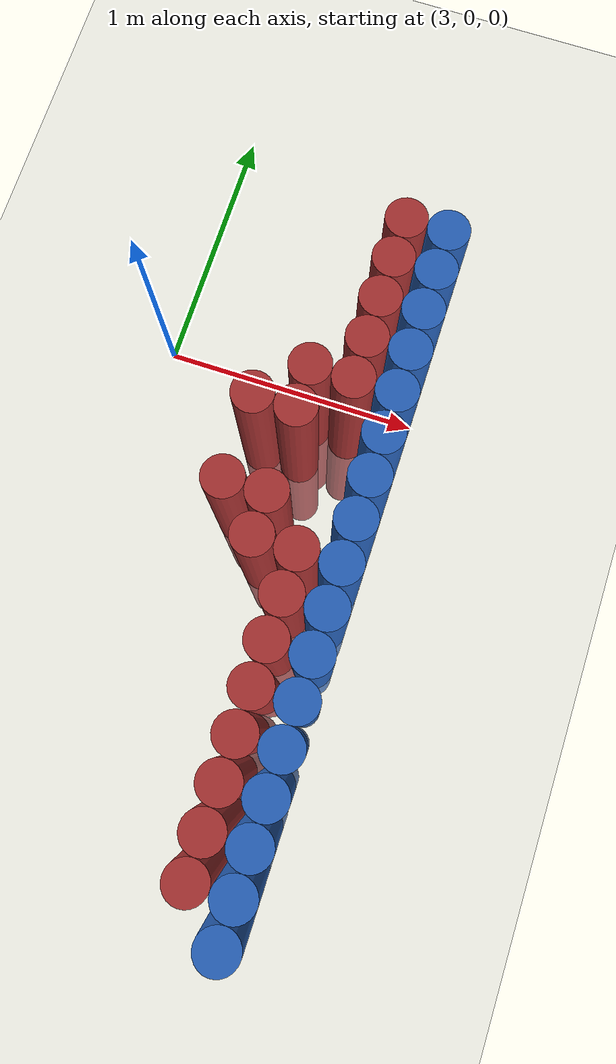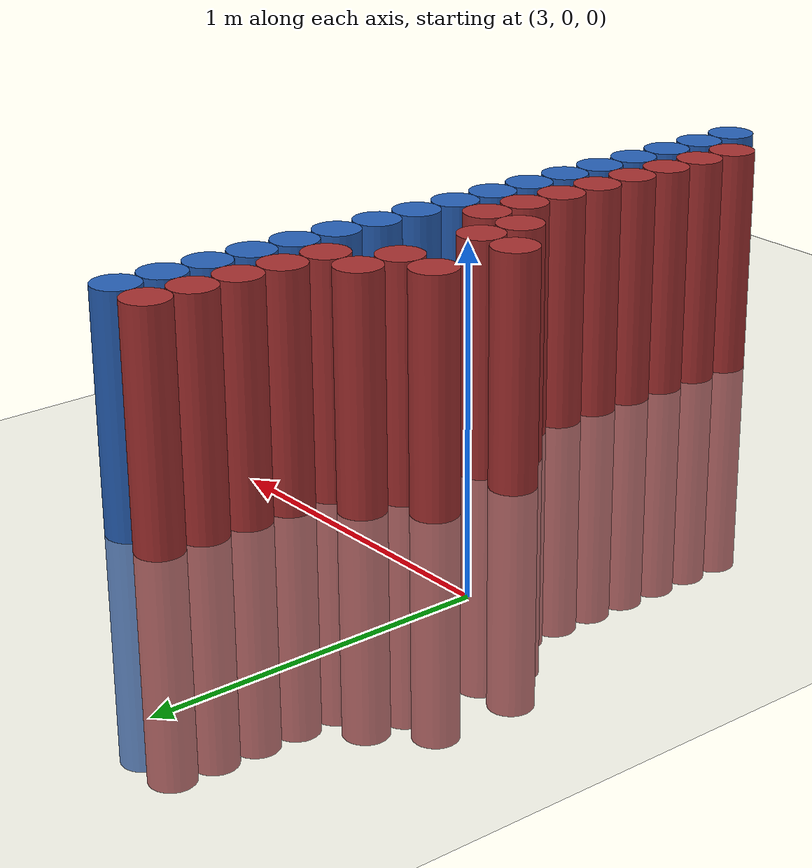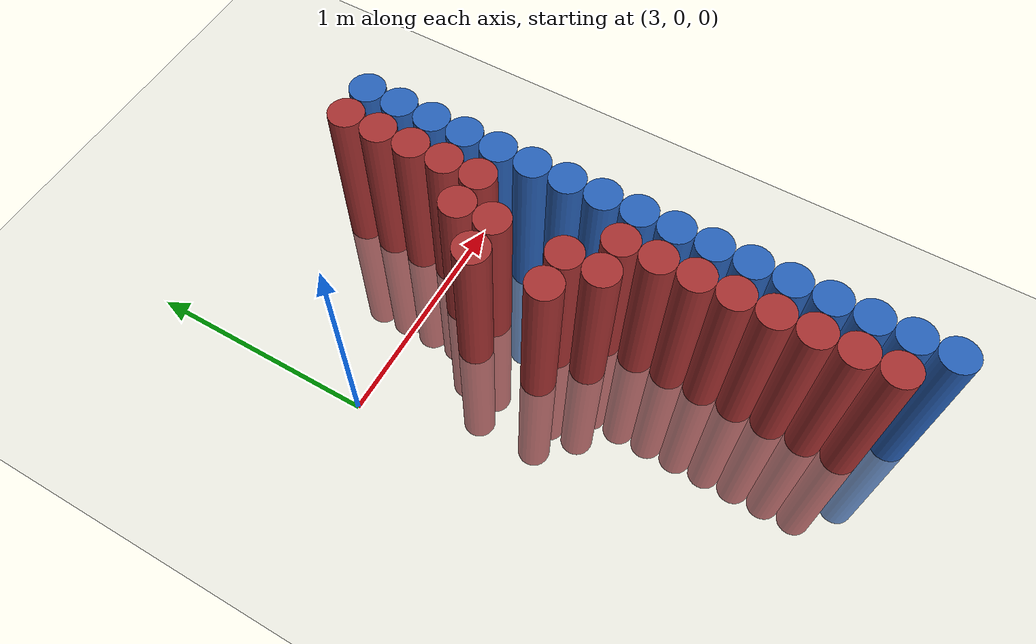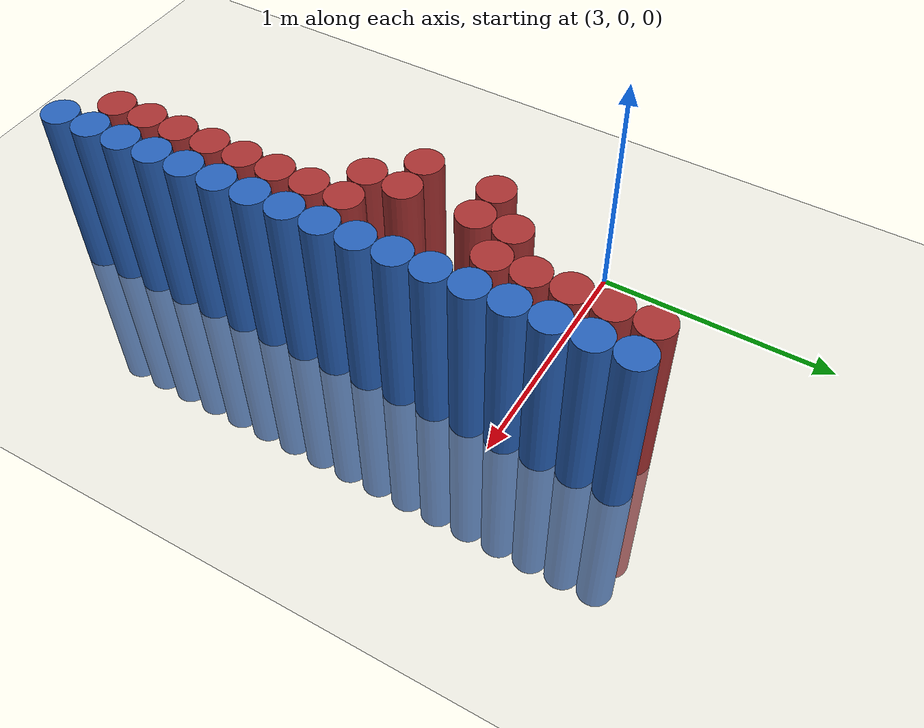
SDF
<sdf version="1.6">
 <world name="default">
  <model name="ground_plane">
   <static>1</static>
   <link name="link">
    <collision name="collision">
     <geometry><plane><normal>0 0 1</normal><size>100 100</size></plane></geometry>
     <surface><friction><ode><mu>100</mu><mu2>50</mu2></ode></friction></surface>
    </collision>
    <visual name="visual">
     <cast_shadows>0</cast_shadows>
     <geometry><plane><normal>0 0 1</normal><size>100 100</size></plane></geometry>
     <material>
      <script><uri>file://media/materials/scripts/gazebo.material</uri><name>Gazebo/Grey</name></script>
     </material>
    </visual>
   </link>
  </model>
  <model name="unit_cylinder_88">
   <static>1</static>
   <pose>3.925000 -1.925000 0.000000 0.000000 0.000000 0.000000</pose>
   <link name="link">
    <inertial>
     <mass>1</mass>
     <inertia><ixx>0.145833</ixx><ixy>0</ixy><ixz>0</ixz><iyy>0.145833</iyy><iyz>0</iyz><izz>0.125</izz></inertia>
    </inertial>
    <collision name="collision">
     <geometry><cylinder><radius>0.075000</radius><length>1.5</length></cylinder></geometry>
    </collision>
    <visual name="visual">
     <geometry><cylinder><radius>0.075000</radius><length>1.5</length></cylinder></geometry>
     <material>
      <ambient>0.152000 0.379000 0.720000 1</ambient>
      <diffuse>0.152000 0.379000 0.720000 1</diffuse>
     </material>
     <material>
      <script><name>Gazebo/Grey</name><uri>file://media/materials/scripts/gazebo.material</uri></script>
     </material>
    </visual>
   </link>
  </model>
  <model name="unit_cylinder_90">
   <static>1</static>
   <pose>3.925000 -1.775000 0.000000 0.000000 0.000000 0.000000</pose>
   <link name="link">
    <inertial>
     <mass>1</mass>
     <inertia><ixx>0.145833</ixx><ixy>0</ixy><ixz>0</ixz><iyy>0.145833</iyy><iyz>0</iyz><izz>0.125</izz></inertia>
    </inertial>
    <collision name="collision">
     <geometry><cylinder><radius>0.075000</radius><length>1.5</length></cylinder></geometry>
    </collision>
    <visual name="visual">
     <geometry><cylinder><radius>0.075000</radius><length>1.5</length></cylinder></geometry>
     <material>
      <ambient>0.152000 0.379000 0.720000 1</ambient>
      <diffuse>0.152000 0.379000 0.720000 1</diffuse>
     </material>
     <material>
      <script><name>Gazebo/Grey</name><uri>file://media/materials/scripts/gazebo.material</uri></script>
     </material>
    </visual>
   </link>
  </model>
  <model name="unit_cylinder_92">
   <static>1</static>
   <pose>3.925000 -1.625000 0.000000 0.000000 0.000000 0.000000</pose>
   <link name="link">
    <inertial>
     <mass>1</mass>
     <inertia><ixx>0.145833</ixx><ixy>0</ixy><ixz>0</ixz><iyy>0.145833</iyy><iyz>0</iyz><izz>0.125</izz></inertia>
    </inertial>
    <collision name="collision">
     <geometry><cylinder><radius>0.075000</radius><length>1.5</length></cylinder></geometry>
    </collision>
    <visual name="visual">
     <geometry><cylinder><radius>0.075000</radius><length>1.5</length></cylinder></geometry>
     <material>
      <ambient>0.152000 0.379000 0.720000 1</ambient>
      <diffuse>0.152000 0.379000 0.720000 1</diffuse>
     </material>
     <material>
      <script><name>Gazebo/Grey</name><uri>file://media/materials/scripts/gazebo.material</uri></script>
     </material>
    </visual>
   </link>
  </model>
  <model name="unit_cylinder_94">
   <static>1</static>
   <pose>3.925000 -1.475000 0.000000 0.000000 0.000000 0.000000</pose>
   <link name="link">
    <inertial>
     <mass>1</mass>
     <inertia><ixx>0.145833</ixx><ixy>0</ixy><ixz>0</ixz><iyy>0.145833</iyy><iyz>0</iyz><izz>0.125</izz></inertia>
    </inertial>
    <collision name="collision">
     <geometry><cylinder><radius>0.075000</radius><length>1.5</length></cylinder></geometry>
    </collision>
    <visual name="visual">
     <geometry><cylinder><radius>0.075000</radius><length>1.5</length></cylinder></geometry>
     <material>
      <ambient>0.152000 0.379000 0.720000 1</ambient>
      <diffuse>0.152000 0.379000 0.720000 1</diffuse>
     </material>
     <material>
      <script><name>Gazebo/Grey</name><uri>file://media/materials/scripts/gazebo.material</uri></script>
     </material>
    </visual>
   </link>
  </model>
  <model name="unit_cylinder_96">
   <static>1</static>
   <pose>3.925000 -1.325000 0.000000 0.000000 0.000000 0.000000</pose>
   <link name="link">
    <inertial>
     <mass>1</mass>
     <inertia><ixx>0.145833</ixx><ixy>0</ixy><ixz>0</ixz><iyy>0.145833</iyy><iyz>0</iyz><izz>0.125</izz></inertia>
    </inertial>
    <collision name="collision">
     <geometry><cylinder><radius>0.075000</radius><length>1.5</length></cylinder></geometry>
    </collision>
    <visual name="visual">
     <geometry><cylinder><radius>0.075000</radius><length>1.5</length></cylinder></geometry>
     <material>
      <ambient>0.152000 0.379000 0.720000 1</ambient>
      <diffuse>0.152000 0.379000 0.720000 1</diffuse>
     </material>
     <material>
      <script><name>Gazebo/Grey</name><uri>file://media/materials/scripts/gazebo.material</uri></script>
     </material>
    </visual>
   </link>
  </model>
  <model name="unit_cylinder_98">
   <static>1</static>
   <pose>3.925000 -1.175000 0.000000 0.000000 0.000000 0.000000</pose>
   <link name="link">
    <inertial>
     <mass>1</mass>
     <inertia><ixx>0.145833</ixx><ixy>0</ixy><ixz>0</ixz><iyy>0.145833</iyy><iyz>0</iyz><izz>0.125</izz></inertia>
    </inertial>
    <collision name="collision">
     <geometry><cylinder><radius>0.075000</radius><length>1.5</length></cylinder></geometry>
    </collision>
    <visual name="visual">
     <geometry><cylinder><radius>0.075000</radius><length>1.5</length></cylinder></geometry>
     <material>
      <ambient>0.152000 0.379000 0.720000 1</ambient>
      <diffuse>0.152000 0.379000 0.720000 1</diffuse>
     </material>
     <material>
      <script><name>Gazebo/Grey</name><uri>file://media/materials/scripts/gazebo.material</uri></script>
     </material>
    </visual>
   </link>
  </model>
  <model name="unit_cylinder_100">
   <static>1</static>
   <pose>3.925000 -1.025000 0.000000 0.000000 0.000000 0.000000</pose>
   <link name="link">
    <inertial>
     <mass>1</mass>
     <inertia><ixx>0.145833</ixx><ixy>0</ixy><ixz>0</ixz><iyy>0.145833</iyy><iyz>0</iyz><izz>0.125</izz></inertia>
    </inertial>
    <collision name="collision">
     <geometry><cylinder><radius>0.075000</radius><length>1.5</length></cylinder></geometry>
    </collision>
    <visual name="visual">
     <geometry><cylinder><radius>0.075000</radius><length>1.5</length></cylinder></geometry>
     <material>
      <ambient>0.152000 0.379000 0.720000 1</ambient>
      <diffuse>0.152000 0.379000 0.720000 1</diffuse>
     </material>
     <material>
      <script><name>Gazebo/Grey</name><uri>file://media/materials/scripts/gazebo.material</uri></script>
     </material>
    </visual>
   </link>
  </model>
  <model name="unit_cylinder_102">
   <static>1</static>
   <pose>3.925000 -0.875000 0.000000 0.000000 0.000000 0.000000</pose>
   <link name="link">
    <inertial>
     <mass>1</mass>
     <inertia><ixx>0.145833</ixx><ixy>0</ixy><ixz>0</ixz><iyy>0.145833</iyy><iyz>0</iyz><izz>0.125</izz></inertia>
    </inertial>
    <collision name="collision">
     <geometry><cylinder><radius>0.075000</radius><length>1.5</length></cylinder></geometry>
    </collision>
    <visual name="visual">
     <geometry><cylinder><radius>0.075000</radius><length>1.5</length></cylinder></geometry>
     <material>
      <ambient>0.152000 0.379000 0.720000 1</ambient>
      <diffuse>0.152000 0.379000 0.720000 1</diffuse>
     </material>
     <material>
      <script><name>Gazebo/Grey</name><uri>file://media/materials/scripts/gazebo.material</uri></script>
     </material>
    </visual>
   </link>
  </model>
  <model name="unit_cylinder_104">
   <static>1</static>
   <pose>3.925000 -0.725000 0.000000 0.000000 0.000000 0.000000</pose>
   <link name="link">
    <inertial>
     <mass>1</mass>
     <inertia><ixx>0.145833</ixx><ixy>0</ixy><ixz>0</ixz><iyy>0.145833</iyy><iyz>0</iyz><izz>0.125</izz></inertia>
    </inertial>
    <collision name="collision">
     <geometry><cylinder><radius>0.075000</radius><length>1.5</length></cylinder></geometry>
    </collision>
    <visual name="visual">
     <geometry><cylinder><radius>0.075000</radius><length>1.5</length></cylinder></geometry>
     <material>
      <ambient>0.152000 0.379000 0.720000 1</ambient>
      <diffuse>0.152000 0.379000 0.720000 1</diffuse>
     </material>
     <material>
      <script><name>Gazebo/Grey</name><uri>file://media/materials/scripts/gazebo.material</uri></script>
     </material>
    </visual>
   </link>
  </model>
  <model name="unit_cylinder_106">
   <static>1</static>
   <pose>3.925000 -0.575000 0.000000 0.000000 0.000000 0.000000</pose>
   <link name="link">
    <inertial>
     <mass>1</mass>
     <inertia><ixx>0.145833</ixx><ixy>0</ixy><ixz>0</ixz><iyy>0.145833</iyy><iyz>0</iyz><izz>0.125</izz></inertia>
    </inertial>
    <collision name="collision">
     <geometry><cylinder><radius>0.075000</radius><length>1.5</length></cylinder></geometry>
    </collision>
    <visual name="visual">
     <geometry><cylinder><radius>0.075000</radius><length>1.5</length></cylinder></geometry>
     <material>
      <ambient>0.152000 0.379000 0.720000 1</ambient>
      <diffuse>0.152000 0.379000 0.720000 1</diffuse>
     </material>
     <material>
      <script><name>Gazebo/Grey</name><uri>file://media/materials/scripts/gazebo.material</uri></script>
     </material>
    </visual>
   </link>
  </model>
  <model name="unit_cylinder_108">
   <static>1</static>
   <pose>3.925000 -0.425000 0.000000 0.000000 0.000000 0.000000</pose>
   <link name="link">
    <inertial>
     <mass>1</mass>
     <inertia><ixx>0.145833</ixx><ixy>0</ixy><ixz>0</ixz><iyy>0.145833</iyy><iyz>0</iyz><izz>0.125</izz></inertia>
    </inertial>
    <collision name="collision">
     <geometry><cylinder><radius>0.075000</radius><length>1.5</length></cylinder></geometry>
    </collision>
    <visual name="visual">
     <geometry><cylinder><radius>0.075000</radius><length>1.5</length></cylinder></geometry>
     <material>
      <ambient>0.152000 0.379000 0.720000 1</ambient>
      <diffuse>0.152000 0.379000 0.720000 1</diffuse>
     </material>
     <material>
      <script><name>Gazebo/Grey</name><uri>file://media/materials/scripts/gazebo.material</uri></script>
     </material>
    </visual>
   </link>
  </model>
  <model name="unit_cylinder_110">
   <static>1</static>
   <pose>3.925000 -0.275000 0.000000 0.000000 0.000000 0.000000</pose>
   <link name="link">
    <inertial>
     <mass>1</mass>
     <inertia><ixx>0.145833</ixx><ixy>0</ixy><ixz>0</ixz><iyy>0.145833</iyy><iyz>0</iyz><izz>0.125</izz></inertia>
    </inertial>
    <collision name="collision">
     <geometry><cylinder><radius>0.075000</radius><length>1.5</length></cylinder></geometry>
    </collision>
    <visual name="visual">
     <geometry><cylinder><radius>0.075000</radius><length>1.5</length></cylinder></geometry>
     <material>
      <ambient>0.152000 0.379000 0.720000 1</ambient>
      <diffuse>0.152000 0.379000 0.720000 1</diffuse>
     </material>
     <material>
      <script><name>Gazebo/Grey</name><uri>file://media/materials/scripts/gazebo.material</uri></script>
     </material>
    </visual>
   </link>
  </model>
  <model name="unit_cylinder_112">
   <static>1</static>
   <pose>3.925000 -0.125000 0.000000 0.000000 0.000000 0.000000</pose>
   <link name="link">
    <inertial>
     <mass>1</mass>
     <inertia><ixx>0.145833</ixx><ixy>0</ixy><ixz>0</ixz><iyy>0.145833</iyy><iyz>0</iyz><izz>0.125</izz></inertia>
    </inertial>
    <collision name="collision">
     <geometry><cylinder><radius>0.075000</radius><length>1.5</length></cylinder></geometry>
    </collision>
    <visual name="visual">
     <geometry><cylinder><radius>0.075000</radius><length>1.5</length></cylinder></geometry>
     <material>
      <ambient>0.152000 0.379000 0.720000 1</ambient>
      <diffuse>0.152000 0.379000 0.720000 1</diffuse>
     </material>
     <material>
      <script><name>Gazebo/Grey</name><uri>file://media/materials/scripts/gazebo.material</uri></script>
     </material>
    </visual>
   </link>
  </model>
  <model name="unit_cylinder_114">
   <static>1</static>
   <pose>3.925000 0.025000 0.000000 0.000000 0.000000 0.000000</pose>
   <link name="link">
    <inertial>
     <mass>1</mass>
     <inertia><ixx>0.145833</ixx><ixy>0</ixy><ixz>0</ixz><iyy>0.145833</iyy><iyz>0</iyz><izz>0.125</izz></inertia>
    </inertial>
    <collision name="collision">
     <geometry><cylinder><radius>0.075000</radius><length>1.5</length></cylinder></geometry>
    </collision>
    <visual name="visual">
     <geometry><cylinder><radius>0.075000</radius><length>1.5</length></cylinder></geometry>
     <material>
      <ambient>0.152000 0.379000 0.720000 1</ambient>
      <diffuse>0.152000 0.379000 0.720000 1</diffuse>
     </material>
     <material>
      <script><name>Gazebo/Grey</name><uri>file://media/materials/scripts/gazebo.material</uri></script>
     </material>
    </visual>
   </link>
  </model>
  <model name="unit_cylinder_116">
   <static>1</static>
   <pose>3.925000 0.175000 0.000000 0.000000 0.000000 0.000000</pose>
   <link name="link">
    <inertial>
     <mass>1</mass>
     <inertia><ixx>0.145833</ixx><ixy>0</ixy><ixz>0</ixz><iyy>0.145833</iyy><iyz>0</iyz><izz>0.125</izz></inertia>
    </inertial>
    <collision name="collision">
     <geometry><cylinder><radius>0.075000</radius><length>1.5</length></cylinder></geometry>
    </collision>
    <visual name="visual">
     <geometry><cylinder><radius>0.075000</radius><length>1.5</length></cylinder></geometry>
     <material>
      <ambient>0.152000 0.379000 0.720000 1</ambient>
      <diffuse>0.152000 0.379000 0.720000 1</diffuse>
     </material>
     <material>
      <script><name>Gazebo/Grey</name><uri>file://media/materials/scripts/gazebo.material</uri></script>
     </material>
    </visual>
   </link>
  </model>
  <model name="unit_cylinder_118">
   <static>1</static>
   <pose>3.925000 0.325000 0.000000 0.000000 0.000000 0.000000</pose>
   <link name="link">
    <inertial>
     <mass>1</mass>
     <inertia><ixx>0.145833</ixx><ixy>0</ixy><ixz>0</ixz><iyy>0.145833</iyy><iyz>0</iyz><izz>0.125</izz></inertia>
    </inertial>
    <collision name="collision">
     <geometry><cylinder><radius>0.075000</radius><length>1.5</length></cylinder></geometry>
    </collision>
    <visual name="visual">
     <geometry><cylinder><radius>0.075000</radius><length>1.5</length></cylinder></geometry>
     <material>
      <ambient>0.152000 0.379000 0.720000 1</ambient>
      <diffuse>0.152000 0.379000 0.720000 1</diffuse>
     </material>
     <material>
      <script><name>Gazebo/Grey</name><uri>file://media/materials/scripts/gazebo.material</uri></script>
     </material>
    </visual>
   </link>
  </model>
  <model name="unit_cylinder_120">
   <static>1</static>
   <pose>3.925000 0.475000 0.000000 0.000000 0.000000 0.000000</pose>
   <link name="link">
    <inertial>
     <mass>1</mass>
     <inertia><ixx>0.145833</ixx><ixy>0</ixy><ixz>0</ixz><iyy>0.145833</iyy><iyz>0</iyz><izz>0.125</izz></inertia>
    </inertial>
    <collision name="collision">
     <geometry><cylinder><radius>0.075000</radius><length>1.5</length></cylinder></geometry>
    </collision>
    <visual name="visual">
     <geometry><cylinder><radius>0.075000</radius><length>1.5</length></cylinder></geometry>
     <material>
      <ambient>0.152000 0.379000 0.720000 1</ambient>
      <diffuse>0.152000 0.379000 0.720000 1</diffuse>
     </material>
     <material>
      <script><name>Gazebo/Grey</name><uri>file://media/materials/scripts/gazebo.material</uri></script>
     </material>
    </visual>
   </link>
  </model>
  <model name="unit_cylinder_481">
   <static>1</static>
   <pose>3.475000 -0.575000 0.000000 0.000000 0.000000 0.000000</pose>
   <link name="link">
    <inertial>
     <mass>1</mass>
     <inertia><ixx>0.145833</ixx><ixy>0</ixy><ixz>0</ixz><iyy>0.145833</iyy><iyz>0</iyz><izz>0.125</izz></inertia>
    </inertial>
    <collision name="collision">
     <geometry><cylinder><radius>0.075000</radius><length>1.5</length></cylinder></geometry>
    </collision>
    <visual name="visual">
     <geometry><cylinder><radius>0.075000</radius><length>1.5</length></cylinder></geometry>
     <material>
      <ambient>0.648000 0.192000 0.192000 1</ambient>
      <diffuse>0.648000 0.192000 0.192000 1</diffuse>
     </material>
     <material>
      <script><name>Gazebo/Grey</name><uri>file://media/materials/scripts/gazebo.material</uri></script>
     </material>
    </visual>
   </link>
  </model>
  <model name="unit_cylinder_482">
   <static>1</static>
   <pose>3.475000 -0.275000 0.000000 0.000000 0.000000 0.000000</pose>
   <link name="link">
    <inertial>
     <mass>1</mass>
     <inertia><ixx>0.145833</ixx><ixy>0</ixy><ixz>0</ixz><iyy>0.145833</iyy><iyz>0</iyz><izz>0.125</izz></inertia>
    </inertial>
    <collision name="collision">
     <geometry><cylinder><radius>0.075000</radius><length>1.5</length></cylinder></geometry>
    </collision>
    <visual name="visual">
     <geometry><cylinder><radius>0.075000</radius><length>1.5</length></cylinder></geometry>
     <material>
      <ambient>0.648000 0.192000 0.192000 1</ambient>
      <diffuse>0.648000 0.192000 0.192000 1</diffuse>
     </material>
     <material>
      <script><name>Gazebo/Grey</name><uri>file://media/materials/scripts/gazebo.material</uri></script>
     </material>
    </visual>
   </link>
  </model>
  <model name="unit_cylinder_487">
   <static>1</static>
   <pose>3.625000 -0.725000 0.000000 0.000000 0.000000 0.000000</pose>
   <link name="link">
    <inertial>
     <mass>1</mass>
     <inertia><ixx>0.145833</ixx><ixy>0</ixy><ixz>0</ixz><iyy>0.145833</iyy><iyz>0</iyz><izz>0.125</izz></inertia>
    </inertial>
    <collision name="collision">
     <geometry><cylinder><radius>0.075000</radius><length>1.5</length></cylinder></geometry>
    </collision>
    <visual name="visual">
     <geometry><cylinder><radius>0.075000</radius><length>1.5</length></cylinder></geometry>
     <material>
      <ambient>0.648000 0.192000 0.192000 1</ambient>
      <diffuse>0.648000 0.192000 0.192000 1</diffuse>
     </material>
     <material>
      <script><name>Gazebo/Grey</name><uri>file://media/materials/scripts/gazebo.material</uri></script>
     </material>
    </visual>
   </link>
  </model>
  <model name="unit_cylinder_488">
   <static>1</static>
   <pose>3.625000 -0.575000 0.000000 0.000000 0.000000 0.000000</pose>
   <link name="link">
    <inertial>
     <mass>1</mass>
     <inertia><ixx>0.145833</ixx><ixy>0</ixy><ixz>0</ixz><iyy>0.145833</iyy><iyz>0</iyz><izz>0.125</izz></inertia>
    </inertial>
    <collision name="collision">
     <geometry><cylinder><radius>0.075000</radius><length>1.5</length></cylinder></geometry>
    </collision>
    <visual name="visual">
     <geometry><cylinder><radius>0.075000</radius><length>1.5</length></cylinder></geometry>
     <material>
      <ambient>0.648000 0.192000 0.192000 1</ambient>
      <diffuse>0.648000 0.192000 0.192000 1</diffuse>
     </material>
     <material>
      <script><name>Gazebo/Grey</name><uri>file://media/materials/scripts/gazebo.material</uri></script>
     </material>
    </visual>
   </link>
  </model>
  <model name="unit_cylinder_489">
   <static>1</static>
   <pose>3.625000 -0.275000 0.000000 0.000000 0.000000 0.000000</pose>
   <link name="link">
    <inertial>
     <mass>1</mass>
     <inertia><ixx>0.145833</ixx><ixy>0</ixy><ixz>0</ixz><iyy>0.145833</iyy><iyz>0</iyz><izz>0.125</izz></inertia>
    </inertial>
    <collision name="collision">
     <geometry><cylinder><radius>0.075000</radius><length>1.5</length></cylinder></geometry>
    </collision>
    <visual name="visual">
     <geometry><cylinder><radius>0.075000</radius><length>1.5</length></cylinder></geometry>
     <material>
      <ambient>0.648000 0.192000 0.192000 1</ambient>
      <diffuse>0.648000 0.192000 0.192000 1</diffuse>
     </material>
     <material>
      <script><name>Gazebo/Grey</name><uri>file://media/materials/scripts/gazebo.material</uri></script>
     </material>
    </visual>
   </link>
  </model>
  <model name="unit_cylinder_490">
   <static>1</static>
   <pose>3.625000 -0.125000 0.000000 0.000000 0.000000 0.000000</pose>
   <link name="link">
    <inertial>
     <mass>1</mass>
     <inertia><ixx>0.145833</ixx><ixy>0</ixy><ixz>0</ixz><iyy>0.145833</iyy><iyz>0</iyz><izz>0.125</izz></inertia>
    </inertial>
    <collision name="collision">
     <geometry><cylinder><radius>0.075000</radius><length>1.5</length></cylinder></geometry>
    </collision>
    <visual name="visual">
     <geometry><cylinder><radius>0.075000</radius><length>1.5</length></cylinder></geometry>
     <material>
      <ambient>0.648000 0.192000 0.192000 1</ambient>
      <diffuse>0.648000 0.192000 0.192000 1</diffuse>
     </material>
     <material>
      <script><name>Gazebo/Grey</name><uri>file://media/materials/scripts/gazebo.material</uri></script>
     </material>
    </visual>
   </link>
  </model>
  <model name="unit_cylinder_501">
   <static>1</static>
   <pose>3.775000 -1.775000 0.000000 0.000000 0.000000 0.000000</pose>
   <link name="link">
    <inertial>
     <mass>1</mass>
     <inertia><ixx>0.145833</ixx><ixy>0</ixy><ixz>0</ixz><iyy>0.145833</iyy><iyz>0</iyz><izz>0.125</izz></inertia>
    </inertial>
    <collision name="collision">
     <geometry><cylinder><radius>0.075000</radius><length>1.5</length></cylinder></geometry>
    </collision>
    <visual name="visual">
     <geometry><cylinder><radius>0.075000</radius><length>1.5</length></cylinder></geometry>
     <material>
      <ambient>0.648000 0.192000 0.192000 1</ambient>
      <diffuse>0.648000 0.192000 0.192000 1</diffuse>
     </material>
     <material>
      <script><name>Gazebo/Grey</name><uri>file://media/materials/scripts/gazebo.material</uri></script>
     </material>
    </visual>
   </link>
  </model>
  <model name="unit_cylinder_502">
   <static>1</static>
   <pose>3.775000 -1.625000 0.000000 0.000000 0.000000 0.000000</pose>
   <link name="link">
    <inertial>
     <mass>1</mass>
     <inertia><ixx>0.145833</ixx><ixy>0</ixy><ixz>0</ixz><iyy>0.145833</iyy><iyz>0</iyz><izz>0.125</izz></inertia>
    </inertial>
    <collision name="collision">
     <geometry><cylinder><radius>0.075000</radius><length>1.5</length></cylinder></geometry>
    </collision>
    <visual name="visual">
     <geometry><cylinder><radius>0.075000</radius><length>1.5</length></cylinder></geometry>
     <material>
      <ambient>0.648000 0.192000 0.192000 1</ambient>
      <diffuse>0.648000 0.192000 0.192000 1</diffuse>
     </material>
     <material>
      <script><name>Gazebo/Grey</name><uri>file://media/materials/scripts/gazebo.material</uri></script>
     </material>
    </visual>
   </link>
  </model>
  <model name="unit_cylinder_503">
   <static>1</static>
   <pose>3.775000 -1.475000 0.000000 0.000000 0.000000 0.000000</pose>
   <link name="link">
    <inertial>
     <mass>1</mass>
     <inertia><ixx>0.145833</ixx><ixy>0</ixy><ixz>0</ixz><iyy>0.145833</iyy><iyz>0</iyz><izz>0.125</izz></inertia>
    </inertial>
    <collision name="collision">
     <geometry><cylinder><radius>0.075000</radius><length>1.5</length></cylinder></geometry>
    </collision>
    <visual name="visual">
     <geometry><cylinder><radius>0.075000</radius><length>1.5</length></cylinder></geometry>
     <material>
      <ambient>0.648000 0.192000 0.192000 1</ambient>
      <diffuse>0.648000 0.192000 0.192000 1</diffuse>
     </material>
     <material>
      <script><name>Gazebo/Grey</name><uri>file://media/materials/scripts/gazebo.material</uri></script>
     </material>
    </visual>
   </link>
  </model>
  <model name="unit_cylinder_504">
   <static>1</static>
   <pose>3.775000 -1.325000 0.000000 0.000000 0.000000 0.000000</pose>
   <link name="link">
    <inertial>
     <mass>1</mass>
     <inertia><ixx>0.145833</ixx><ixy>0</ixy><ixz>0</ixz><iyy>0.145833</iyy><iyz>0</iyz><izz>0.125</izz></inertia>
    </inertial>
    <collision name="collision">
     <geometry><cylinder><radius>0.075000</radius><length>1.5</length></cylinder></geometry>
    </collision>
    <visual name="visual">
     <geometry><cylinder><radius>0.075000</radius><length>1.5</length></cylinder></geometry>
     <material>
      <ambient>0.648000 0.192000 0.192000 1</ambient>
      <diffuse>0.648000 0.192000 0.192000 1</diffuse>
     </material>
     <material>
      <script><name>Gazebo/Grey</name><uri>file://media/materials/scripts/gazebo.material</uri></script>
     </material>
    </visual>
   </link>
  </model>
  <model name="unit_cylinder_505">
   <static>1</static>
   <pose>3.775000 -1.175000 0.000000 0.000000 0.000000 0.000000</pose>
   <link name="link">
    <inertial>
     <mass>1</mass>
     <inertia><ixx>0.145833</ixx><ixy>0</ixy><ixz>0</ixz><iyy>0.145833</iyy><iyz>0</iyz><izz>0.125</izz></inertia>
    </inertial>
    <collision name="collision">
     <geometry><cylinder><radius>0.075000</radius><length>1.5</length></cylinder></geometry>
    </collision>
    <visual name="visual">
     <geometry><cylinder><radius>0.075000</radius><length>1.5</length></cylinder></geometry>
     <material>
      <ambient>0.648000 0.192000 0.192000 1</ambient>
      <diffuse>0.648000 0.192000 0.192000 1</diffuse>
     </material>
     <material>
      <script><name>Gazebo/Grey</name><uri>file://media/materials/scripts/gazebo.material</uri></script>
     </material>
    </visual>
   </link>
  </model>
  <model name="unit_cylinder_506">
   <static>1</static>
   <pose>3.775000 -1.025000 0.000000 0.000000 0.000000 0.000000</pose>
   <link name="link">
    <inertial>
     <mass>1</mass>
     <inertia><ixx>0.145833</ixx><ixy>0</ixy><ixz>0</ixz><iyy>0.145833</iyy><iyz>0</iyz><izz>0.125</izz></inertia>
    </inertial>
    <collision name="collision">
     <geometry><cylinder><radius>0.075000</radius><length>1.5</length></cylinder></geometry>
    </collision>
    <visual name="visual">
     <geometry><cylinder><radius>0.075000</radius><length>1.5</length></cylinder></geometry>
     <material>
      <ambient>0.648000 0.192000 0.192000 1</ambient>
      <diffuse>0.648000 0.192000 0.192000 1</diffuse>
     </material>
     <material>
      <script><name>Gazebo/Grey</name><uri>file://media/materials/scripts/gazebo.material</uri></script>
     </material>
    </visual>
   </link>
  </model>
  <model name="unit_cylinder_507">
   <static>1</static>
   <pose>3.775000 -0.875000 0.000000 0.000000 0.000000 0.000000</pose>
   <link name="link">
    <inertial>
     <mass>1</mass>
     <inertia><ixx>0.145833</ixx><ixy>0</ixy><ixz>0</ixz><iyy>0.145833</iyy><iyz>0</iyz><izz>0.125</izz></inertia>
    </inertial>
    <collision name="collision">
     <geometry><cylinder><radius>0.075000</radius><length>1.5</length></cylinder></geometry>
    </collision>
    <visual name="visual">
     <geometry><cylinder><radius>0.075000</radius><length>1.5</length></cylinder></geometry>
     <material>
      <ambient>0.648000 0.192000 0.192000 1</ambient>
      <diffuse>0.648000 0.192000 0.192000 1</diffuse>
     </material>
     <material>
      <script><name>Gazebo/Grey</name><uri>file://media/materials/scripts/gazebo.material</uri></script>
     </material>
    </visual>
   </link>
  </model>
  <model name="unit_cylinder_508">
   <static>1</static>
   <pose>3.775000 -0.725000 0.000000 0.000000 0.000000 0.000000</pose>
   <link name="link">
    <inertial>
     <mass>1</mass>
     <inertia><ixx>0.145833</ixx><ixy>0</ixy><ixz>0</ixz><iyy>0.145833</iyy><iyz>0</iyz><izz>0.125</izz></inertia>
    </inertial>
    <collision name="collision">
     <geometry><cylinder><radius>0.075000</radius><length>1.5</length></cylinder></geometry>
    </collision>
    <visual name="visual">
     <geometry><cylinder><radius>0.075000</radius><length>1.5</length></cylinder></geometry>
     <material>
      <ambient>0.648000 0.192000 0.192000 1</ambient>
      <diffuse>0.648000 0.192000 0.192000 1</diffuse>
     </material>
     <material>
      <script><name>Gazebo/Grey</name><uri>file://media/materials/scripts/gazebo.material</uri></script>
     </material>
    </visual>
   </link>
  </model>
  <model name="unit_cylinder_509">
   <static>1</static>
   <pose>3.775000 -0.125000 0.000000 0.000000 0.000000 0.000000</pose>
   <link name="link">
    <inertial>
     <mass>1</mass>
     <inertia><ixx>0.145833</ixx><ixy>0</ixy><ixz>0</ixz><iyy>0.145833</iyy><iyz>0</iyz><izz>0.125</izz></inertia>
    </inertial>
    <collision name="collision">
     <geometry><cylinder><radius>0.075000</radius><length>1.5</length></cylinder></geometry>
    </collision>
    <visual name="visual">
     <geometry><cylinder><radius>0.075000</radius><length>1.5</length></cylinder></geometry>
     <material>
      <ambient>0.648000 0.192000 0.192000 1</ambient>
      <diffuse>0.648000 0.192000 0.192000 1</diffuse>
     </material>
     <material>
      <script><name>Gazebo/Grey</name><uri>file://media/materials/scripts/gazebo.material</uri></script>
     </material>
    </visual>
   </link>
  </model>
  <model name="unit_cylinder_510">
   <static>1</static>
   <pose>3.775000 0.025000 0.000000 0.000000 0.000000 0.000000</pose>
   <link name="link">
    <inertial>
     <mass>1</mass>
     <inertia><ixx>0.145833</ixx><ixy>0</ixy><ixz>0</ixz><iyy>0.145833</iyy><iyz>0</iyz><izz>0.125</izz></inertia>
    </inertial>
    <collision name="collision">
     <geometry><cylinder><radius>0.075000</radius><length>1.5</length></cylinder></geometry>
    </collision>
    <visual name="visual">
     <geometry><cylinder><radius>0.075000</radius><length>1.5</length></cylinder></geometry>
     <material>
      <ambient>0.648000 0.192000 0.192000 1</ambient>
      <diffuse>0.648000 0.192000 0.192000 1</diffuse>
     </material>
     <material>
      <script><name>Gazebo/Grey</name><uri>file://media/materials/scripts/gazebo.material</uri></script>
     </material>
    </visual>
   </link>
  </model>
  <model name="unit_cylinder_511">
   <static>1</static>
   <pose>3.775000 0.175000 0.000000 0.000000 0.000000 0.000000</pose>
   <link name="link">
    <inertial>
     <mass>1</mass>
     <inertia><ixx>0.145833</ixx><ixy>0</ixy><ixz>0</ixz><iyy>0.145833</iyy><iyz>0</iyz><izz>0.125</izz></inertia>
    </inertial>
    <collision name="collision">
     <geometry><cylinder><radius>0.075000</radius><length>1.5</length></cylinder></geometry>
    </collision>
    <visual name="visual">
     <geometry><cylinder><radius>0.075000</radius><length>1.5</length></cylinder></geometry>
     <material>
      <ambient>0.648000 0.192000 0.192000 1</ambient>
      <diffuse>0.648000 0.192000 0.192000 1</diffuse>
     </material>
     <material>
      <script><name>Gazebo/Grey</name><uri>file://media/materials/scripts/gazebo.material</uri></script>
     </material>
    </visual>
   </link>
  </model>
  <model name="unit_cylinder_512">
   <static>1</static>
   <pose>3.775000 0.325000 0.000000 0.000000 0.000000 0.000000</pose>
   <link name="link">
    <inertial>
     <mass>1</mass>
     <inertia><ixx>0.145833</ixx><ixy>0</ixy><ixz>0</ixz><iyy>0.145833</iyy><iyz>0</iyz><izz>0.125</izz></inertia>
    </inertial>
    <collision name="collision">
     <geometry><cylinder><radius>0.075000</radius><length>1.5</length></cylinder></geometry>
    </collision>
    <visual name="visual">
     <geometry><cylinder><radius>0.075000</radius><length>1.5</length></cylinder></geometry>
     <material>
      <ambient>0.648000 0.192000 0.192000 1</ambient>
      <diffuse>0.648000 0.192000 0.192000 1</diffuse>
     </material>
     <material>
      <script><name>Gazebo/Grey</name><uri>file://media/materials/scripts/gazebo.material</uri></script>
     </material>
    </visual>
   </link>
  </model>
  <model name="unit_cylinder_513">
   <static>1</static>
   <pose>3.775000 0.475000 0.000000 0.000000 0.000000 0.000000</pose>
   <link name="link">
    <inertial>
     <mass>1</mass>
     <inertia><ixx>0.145833</ixx><ixy>0</ixy><ixz>0</ixz><iyy>0.145833</iyy><iyz>0</iyz><izz>0.125</izz></inertia>
    </inertial>
    <collision name="collision">
     <geometry><cylinder><radius>0.075000</radius><length>1.5</length></cylinder></geometry>
    </collision>
    <visual name="visual">
     <geometry><cylinder><radius>0.075000</radius><length>1.5</length></cylinder></geometry>
     <material>
      <ambient>0.648000 0.192000 0.192000 1</ambient>
      <diffuse>0.648000 0.192000 0.192000 1</diffuse>
     </material>
     <material>
      <script><name>Gazebo/Grey</name><uri>file://media/materials/scripts/gazebo.material</uri></script>
     </material>
    </visual>
   </link>
  </model>
  <model name="unit_cylinder_531">
   <static>1</static>
   <pose>3.925000 -1.925000 0.000000 0.000000 0.000000 0.000000</pose>
   <link name="link">
    <inertial>
     <mass>1</mass>
     <inertia><ixx>0.145833</ixx><ixy>0</ixy><ixz>0</ixz><iyy>0.145833</iyy><iyz>0</iyz><izz>0.125</izz></inertia>
    </inertial>
    <collision name="collision">
     <geometry><cylinder><radius>0.075000</radius><length>1.5</length></cylinder></geometry>
    </collision>
    <visual name="visual">
     <geometry><cylinder><radius>0.075000</radius><length>1.5</length></cylinder></geometry>
     <material>
      <ambient>0.152000 0.379000 0.720000 1</ambient>
      <diffuse>0.152000 0.379000 0.720000 1</diffuse>
     </material>
     <material>
      <script><name>Gazebo/Grey</name><uri>file://media/materials/scripts/gazebo.material</uri></script>
     </material>
    </visual>
   </link>
  </model>
  <model name="unit_cylinder_532">
   <static>1</static>
   <pose>3.925000 -1.775000 0.000000 0.000000 0.000000 0.000000</pose>
   <link name="link">
    <inertial>
     <mass>1</mass>
     <inertia><ixx>0.145833</ixx><ixy>0</ixy><ixz>0</ixz><iyy>0.145833</iyy><iyz>0</iyz><izz>0.125</izz></inertia>
    </inertial>
    <collision name="collision">
     <geometry><cylinder><radius>0.075000</radius><length>1.5</length></cylinder></geometry>
    </collision>
    <visual name="visual">
     <geometry><cylinder><radius>0.075000</radius><length>1.5</length></cylinder></geometry>
     <material>
      <ambient>0.152000 0.379000 0.720000 1</ambient>
      <diffuse>0.152000 0.379000 0.720000 1</diffuse>
     </material>
     <material>
      <script><name>Gazebo/Grey</name><uri>file://media/materials/scripts/gazebo.material</uri></script>
     </material>
    </visual>
   </link>
  </model>
  <model name="unit_cylinder_533">
   <static>1</static>
   <pose>3.925000 -1.625000 0.000000 0.000000 0.000000 0.000000</pose>
   <link name="link">
    <inertial>
     <mass>1</mass>
     <inertia><ixx>0.145833</ixx><ixy>0</ixy><ixz>0</ixz><iyy>0.145833</iyy><iyz>0</iyz><izz>0.125</izz></inertia>
    </inertial>
    <collision name="collision">
     <geometry><cylinder><radius>0.075000</radius><length>1.5</length></cylinder></geometry>
    </collision>
    <visual name="visual">
     <geometry><cylinder><radius>0.075000</radius><length>1.5</length></cylinder></geometry>
     <material>
      <ambient>0.152000 0.379000 0.720000 1</ambient>
      <diffuse>0.152000 0.379000 0.720000 1</diffuse>
     </material>
     <material>
      <script><name>Gazebo/Grey</name><uri>file://media/materials/scripts/gazebo.material</uri></script>
     </material>
    </visual>
   </link>
  </model>
  <model name="unit_cylinder_534">
   <static>1</static>
   <pose>3.925000 -1.475000 0.000000 0.000000 0.000000 0.000000</pose>
   <link name="link">
    <inertial>
     <mass>1</mass>
     <inertia><ixx>0.145833</ixx><ixy>0</ixy><ixz>0</ixz><iyy>0.145833</iyy><iyz>0</iyz><izz>0.125</izz></inertia>
    </inertial>
    <collision name="collision">
     <geometry><cylinder><radius>0.075000</radius><length>1.5</length></cylinder></geometry>
    </collision>
    <visual name="visual">
     <geometry><cylinder><radius>0.075000</radius><length>1.5</length></cylinder></geometry>
     <material>
      <ambient>0.152000 0.379000 0.720000 1</ambient>
      <diffuse>0.152000 0.379000 0.720000 1</diffuse>
     </material>
     <material>
      <script><name>Gazebo/Grey</name><uri>file://media/materials/scripts/gazebo.material</uri></script>
     </material>
    </visual>
   </link>
  </model>
  <model name="unit_cylinder_535">
   <static>1</static>
   <pose>3.925000 -1.325000 0.000000 0.000000 0.000000 0.000000</pose>
   <link name="link">
    <inertial>
     <mass>1</mass>
     <inertia><ixx>0.145833</ixx><ixy>0</ixy><ixz>0</ixz><iyy>0.145833</iyy><iyz>0</iyz><izz>0.125</izz></inertia>
    </inertial>
    <collision name="collision">
     <geometry><cylinder><radius>0.075000</radius><length>1.5</length></cylinder></geometry>
    </collision>
    <visual name="visual">
     <geometry><cylinder><radius>0.075000</radius><length>1.5</length></cylinder></geometry>
     <material>
      <ambient>0.152000 0.379000 0.720000 1</ambient>
      <diffuse>0.152000 0.379000 0.720000 1</diffuse>
     </material>
     <material>
      <script><name>Gazebo/Grey</name><uri>file://media/materials/scripts/gazebo.material</uri></script>
     </material>
    </visual>
   </link>
  </model>
  <model name="unit_cylinder_536">
   <static>1</static>
   <pose>3.925000 -1.175000 0.000000 0.000000 0.000000 0.000000</pose>
   <link name="link">
    <inertial>
     <mass>1</mass>
     <inertia><ixx>0.145833</ixx><ixy>0</ixy><ixz>0</ixz><iyy>0.145833</iyy><iyz>0</iyz><izz>0.125</izz></inertia>
    </inertial>
    <collision name="collision">
     <geometry><cylinder><radius>0.075000</radius><length>1.5</length></cylinder></geometry>
    </collision>
    <visual name="visual">
     <geometry><cylinder><radius>0.075000</radius><length>1.5</length></cylinder></geometry>
     <material>
      <ambient>0.152000 0.379000 0.720000 1</ambient>
      <diffuse>0.152000 0.379000 0.720000 1</diffuse>
     </material>
     <material>
      <script><name>Gazebo/Grey</name><uri>file://media/materials/scripts/gazebo.material</uri></script>
     </material>
    </visual>
   </link>
  </model>
  <model name="unit_cylinder_537">
   <static>1</static>
   <pose>3.925000 -1.025000 0.000000 0.000000 0.000000 0.000000</pose>
   <link name="link">
    <inertial>
     <mass>1</mass>
     <inertia><ixx>0.145833</ixx><ixy>0</ixy><ixz>0</ixz><iyy>0.145833</iyy><iyz>0</iyz><izz>0.125</izz></inertia>
    </inertial>
    <collision name="collision">
     <geometry><cylinder><radius>0.075000</radius><length>1.5</length></cylinder></geometry>
    </collision>
    <visual name="visual">
     <geometry><cylinder><radius>0.075000</radius><length>1.5</length></cylinder></geometry>
     <material>
      <ambient>0.152000 0.379000 0.720000 1</ambient>
      <diffuse>0.152000 0.379000 0.720000 1</diffuse>
     </material>
     <material>
      <script><name>Gazebo/Grey</name><uri>file://media/materials/scripts/gazebo.material</uri></script>
     </material>
    </visual>
   </link>
  </model>
  <model name="unit_cylinder_538">
   <static>1</static>
   <pose>3.925000 -0.875000 0.000000 0.000000 0.000000 0.000000</pose>
   <link name="link">
    <inertial>
     <mass>1</mass>
     <inertia><ixx>0.145833</ixx><ixy>0</ixy><ixz>0</ixz><iyy>0.145833</iyy><iyz>0</iyz><izz>0.125</izz></inertia>
    </inertial>
    <collision name="collision">
     <geometry><cylinder><radius>0.075000</radius><length>1.5</length></cylinder></geometry>
    </collision>
    <visual name="visual">
     <geometry><cylinder><radius>0.075000</radius><length>1.5</length></cylinder></geometry>
     <material>
      <ambient>0.152000 0.379000 0.720000 1</ambient>
      <diffuse>0.152000 0.379000 0.720000 1</diffuse>
     </material>
     <material>
      <script><name>Gazebo/Grey</name><uri>file://media/materials/scripts/gazebo.material</uri></script>
     </material>
    </visual>
   </link>
  </model>
  <model name="unit_cylinder_539">
   <static>1</static>
   <pose>3.925000 -0.725000 0.000000 0.000000 0.000000 0.000000</pose>
   <link name="link">
    <inertial>
     <mass>1</mass>
     <inertia><ixx>0.145833</ixx><ixy>0</ixy><ixz>0</ixz><iyy>0.145833</iyy><iyz>0</iyz><izz>0.125</izz></inertia>
    </inertial>
    <collision name="collision">
     <geometry><cylinder><radius>0.075000</radius><length>1.5</length></cylinder></geometry>
    </collision>
    <visual name="visual">
     <geometry><cylinder><radius>0.075000</radius><length>1.5</length></cylinder></geometry>
     <material>
      <ambient>0.152000 0.379000 0.720000 1</ambient>
      <diffuse>0.152000 0.379000 0.720000 1</diffuse>
     </material>
     <material>
      <script><name>Gazebo/Grey</name><uri>file://media/materials/scripts/gazebo.material</uri></script>
     </material>
    </visual>
   </link>
  </model>
  <model name="unit_cylinder_540">
   <static>1</static>
   <pose>3.925000 -0.575000 0.000000 0.000000 0.000000 0.000000</pose>
   <link name="link">
    <inertial>
     <mass>1</mass>
     <inertia><ixx>0.145833</ixx><ixy>0</ixy><ixz>0</ixz><iyy>0.145833</iyy><iyz>0</iyz><izz>0.125</izz></inertia>
    </inertial>
    <collision name="collision">
     <geometry><cylinder><radius>0.075000</radius><length>1.5</length></cylinder></geometry>
    </collision>
    <visual name="visual">
     <geometry><cylinder><radius>0.075000</radius><length>1.5</length></cylinder></geometry>
     <material>
      <ambient>0.152000 0.379000 0.720000 1</ambient>
      <diffuse>0.152000 0.379000 0.720000 1</diffuse>
     </material>
     <material>
      <script><name>Gazebo/Grey</name><uri>file://media/materials/scripts/gazebo.material</uri></script>
     </material>
    </visual>
   </link>
  </model>
  <model name="unit_cylinder_541">
   <static>1</static>
   <pose>3.925000 -0.425000 0.000000 0.000000 0.000000 0.000000</pose>
   <link name="link">
    <inertial>
     <mass>1</mass>
     <inertia><ixx>0.145833</ixx><ixy>0</ixy><ixz>0</ixz><iyy>0.145833</iyy><iyz>0</iyz><izz>0.125</izz></inertia>
    </inertial>
    <collision name="collision">
     <geometry><cylinder><radius>0.075000</radius><length>1.5</length></cylinder></geometry>
    </collision>
    <visual name="visual">
     <geometry><cylinder><radius>0.075000</radius><length>1.5</length></cylinder></geometry>
     <material>
      <ambient>0.152000 0.379000 0.720000 1</ambient>
      <diffuse>0.152000 0.379000 0.720000 1</diffuse>
     </material>
     <material>
      <script><name>Gazebo/Grey</name><uri>file://media/materials/scripts/gazebo.material</uri></script>
     </material>
    </visual>
   </link>
  </model>
  <model name="unit_cylinder_542">
   <static>1</static>
   <pose>3.925000 -0.275000 0.000000 0.000000 0.000000 0.000000</pose>
   <link name="link">
    <inertial>
     <mass>1</mass>
     <inertia><ixx>0.145833</ixx><ixy>0</ixy><ixz>0</ixz><iyy>0.145833</iyy><iyz>0</iyz><izz>0.125</izz></inertia>
    </inertial>
    <collision name="collision">
     <geometry><cylinder><radius>0.075000</radius><length>1.5</length></cylinder></geometry>
    </collision>
    <visual name="visual">
     <geometry><cylinder><radius>0.075000</radius><length>1.5</length></cylinder></geometry>
     <material>
      <ambient>0.152000 0.379000 0.720000 1</ambient>
      <diffuse>0.152000 0.379000 0.720000 1</diffuse>
     </material>
     <material>
      <script><name>Gazebo/Grey</name><uri>file://media/materials/scripts/gazebo.material</uri></script>
     </material>
    </visual>
   </link>
  </model>
  <model name="unit_cylinder_543">
   <static>1</static>
   <pose>3.925000 -0.125000 0.000000 0.000000 0.000000 0.000000</pose>
   <link name="link">
    <inertial>
     <mass>1</mass>
     <inertia><ixx>0.145833</ixx><ixy>0</ixy><ixz>0</ixz><iyy>0.145833</iyy><iyz>0</iyz><izz>0.125</izz></inertia>
    </inertial>
    <collision name="collision">
     <geometry><cylinder><radius>0.075000</radius><length>1.5</length></cylinder></geometry>
    </collision>
    <visual name="visual">
     <geometry><cylinder><radius>0.075000</radius><length>1.5</length></cylinder></geometry>
     <material>
      <ambient>0.152000 0.379000 0.720000 1</ambient>
      <diffuse>0.152000 0.379000 0.720000 1</diffuse>
     </material>
     <material>
      <script><name>Gazebo/Grey</name><uri>file://media/materials/scripts/gazebo.material</uri></script>
     </material>
    </visual>
   </link>
  </model>
  <model name="unit_cylinder_544">
   <static>1</static>
   <pose>3.925000 0.025000 0.000000 0.000000 0.000000 0.000000</pose>
   <link name="link">
    <inertial>
     <mass>1</mass>
     <inertia><ixx>0.145833</ixx><ixy>0</ixy><ixz>0</ixz><iyy>0.145833</iyy><iyz>0</iyz><izz>0.125</izz></inertia>
    </inertial>
    <collision name="collision">
     <geometry><cylinder><radius>0.075000</radius><length>1.5</length></cylinder></geometry>
    </collision>
    <visual name="visual">
     <geometry><cylinder><radius>0.075000</radius><length>1.5</length></cylinder></geometry>
     <material>
      <ambient>0.152000 0.379000 0.720000 1</ambient>
      <diffuse>0.152000 0.379000 0.720000 1</diffuse>
     </material>
     <material>
      <script><name>Gazebo/Grey</name><uri>file://media/materials/scripts/gazebo.material</uri></script>
     </material>
    </visual>
   </link>
  </model>
  <model name="unit_cylinder_545">
   <static>1</static>
   <pose>3.925000 0.175000 0.000000 0.000000 0.000000 0.000000</pose>
   <link name="link">
    <inertial>
     <mass>1</mass>
     <inertia><ixx>0.145833</ixx><ixy>0</ixy><ixz>0</ixz><iyy>0.145833</iyy><iyz>0</iyz><izz>0.125</izz></inertia>
    </inertial>
    <collision name="collision">
     <geometry><cylinder><radius>0.075000</radius><length>1.5</length></cylinder></geometry>
    </collision>
    <visual name="visual">
     <geometry><cylinder><radius>0.075000</radius><length>1.5</length></cylinder></geometry>
     <material>
      <ambient>0.152000 0.379000 0.720000 1</ambient>
      <diffuse>0.152000 0.379000 0.720000 1</diffuse>
     </material>
     <material>
      <script><name>Gazebo/Grey</name><uri>file://media/materials/scripts/gazebo.material</uri></script>
     </material>
    </visual>
   </link>
  </model>
  <model name="unit_cylinder_546">
   <static>1</static>
   <pose>3.925000 0.325000 0.000000 0.000000 0.000000 0.000000</pose>
   <link name="link">
    <inertial>
     <mass>1</mass>
     <inertia><ixx>0.145833</ixx><ixy>0</ixy><ixz>0</ixz><iyy>0.145833</iyy><iyz>0</iyz><izz>0.125</izz></inertia>
    </inertial>
    <collision name="collision">
     <geometry><cylinder><radius>0.075000</radius><length>1.5</length></cylinder></geometry>
    </collision>
    <visual name="visual">
     <geometry><cylinder><radius>0.075000</radius><length>1.5</length></cylinder></geometry>
     <material>
      <ambient>0.152000 0.379000 0.720000 1</ambient>
      <diffuse>0.152000 0.379000 0.720000 1</diffuse>
     </material>
     <material>
      <script><name>Gazebo/Grey</name><uri>file://media/materials/scripts/gazebo.material</uri></script>
     </material>
    </visual>
   </link>
  </model>
  <model name="unit_cylinder_547">
   <static>1</static>
   <pose>3.925000 0.475000 0.000000 0.000000 0.000000 0.000000</pose>
   <link name="link">
    <inertial>
     <mass>1</mass>
     <inertia><ixx>0.145833</ixx><ixy>0</ixy><ixz>0</ixz><iyy>0.145833</iyy><iyz>0</iyz><izz>0.125</izz></inertia>
    </inertial>
    <collision name="collision">
     <geometry><cylinder><radius>0.075000</radius><length>1.5</length></cylinder></geometry>
    </collision>
    <visual name="visual">
     <geometry><cylinder><radius>0.075000</radius><length>1.5</length></cylinder></geometry>
     <material>
      <ambient>0.152000 0.379000 0.720000 1</ambient>
      <diffuse>0.152000 0.379000 0.720000 1</diffuse>
     </material>
     <material>
      <script><name>Gazebo/Grey</name><uri>file://media/materials/scripts/gazebo.material</uri></script>
     </material>
    </visual>
   </link>
  </model>
 </world>
</sdf>
